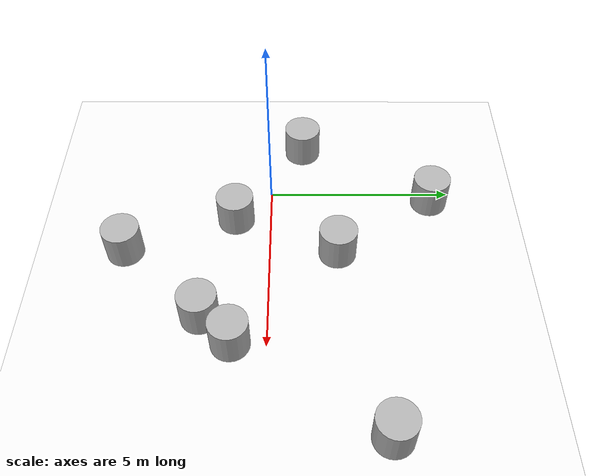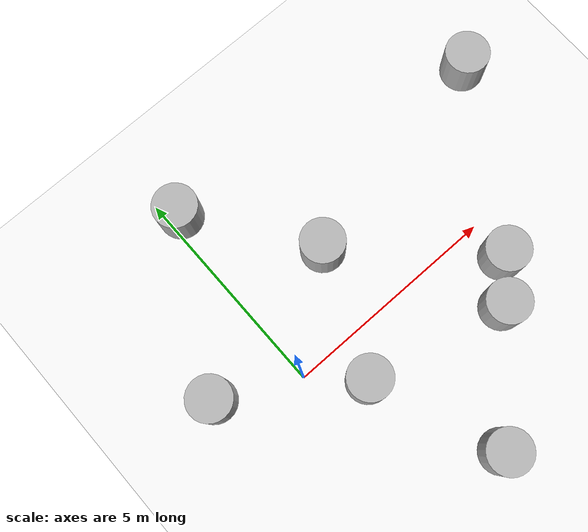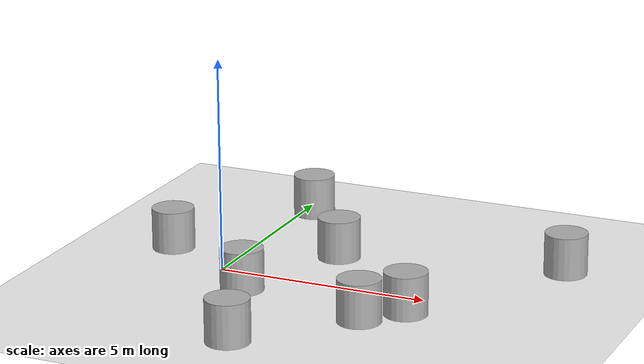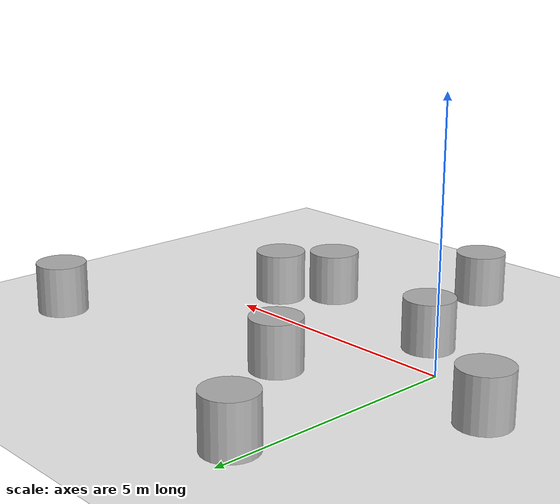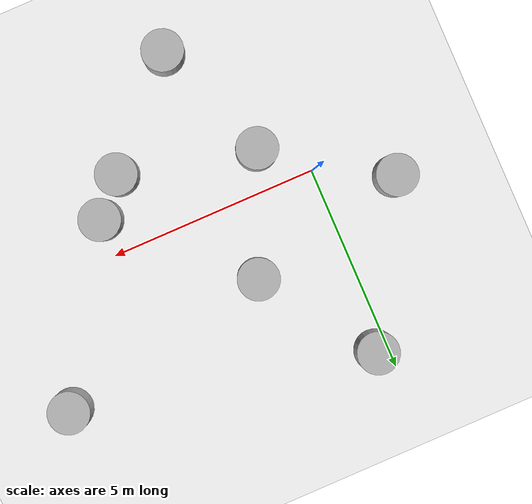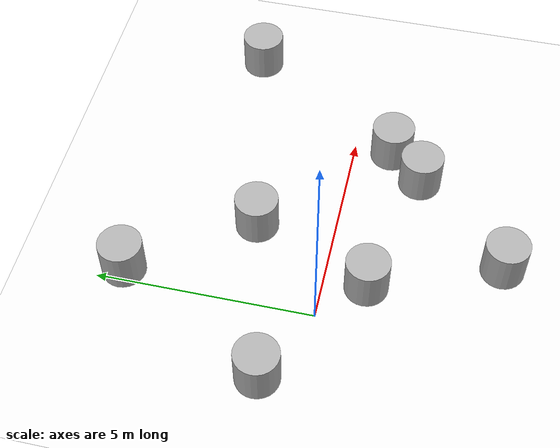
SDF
<sdf version='1.10'>
  <world name='empty'>
    <gravity>0 0 -9.8100000000000005</gravity>
    <plugin name='gz::sim::systems::Physics' filename='gz-sim-physics-system'/>
    <plugin name='gz::sim::systems::UserCommands' filename='gz-sim-user-commands-system'/>
    <plugin name='gz::sim::systems::SceneBroadcaster' filename='gz-sim-scene-broadcaster-system'/>
    <plugin name='gz::sim::systems::Sensors' filename='gz-sim-sensors-system'>
      <render_engine>ogre2</render_engine>
    </plugin>
    <magnetic_field>5.5644999999999998e-06 2.2875799999999999e-05 -4.2388400000000002e-05</magnetic_field>
    <atmosphere type='adiabatic'/>
    <physics type='ode'>
      <max_step_size>0.001</max_step_size>
      <real_time_factor>1</real_time_factor>
      <real_time_update_rate>1000</real_time_update_rate>
    </physics>
    <scene>
      <ambient>0.400000006 0.400000006 0.400000006 1</ambient>
      <background>0.699999988 0.699999988 0.699999988 1</background>
      <shadows>true</shadows>
    </scene>
    <model name='ground_plane'>
      <static>true</static>
      <link name='link'>
        <collision name='collision'>
          <geometry>
            <plane>
              <normal>0 0 1</normal>
              <size>100 100</size>
            </plane>
          </geometry>
          <surface>
            <friction>
              <ode/>
            </friction>
            <bounce/>
            <contact/>
          </surface>
        </collision>
        <visual name='visual'>
          <geometry>
            <plane>
              <normal>0 0 1</normal>
              <size>100 100</size>
            </plane>
          </geometry>
          <material>
            <ambient>0.920000017 0.920000017 0.920000017 1</ambient>
            <diffuse>0.959999979 0.959999979 0.959999979 1</diffuse>
            <specular>0.0500000007 0.0500000007 0.0500000007 1</specular>
          </material>
        </visual>
        <pose>0 0 0 0 0 0</pose>
        <inertial>
          <pose>0 0 0 0 0 0</pose>
          <mass>1</mass>
          <inertia>
            <ixx>1</ixx>
            <ixy>0</ixy>
            <ixz>0</ixz>
            <iyy>1</iyy>
            <iyz>0</iyz>
            <izz>1</izz>
          </inertia>
        </inertial>
        <enable_wind>false</enable_wind>
      </link>
      <pose>0 0 0 0 0 0</pose>
      <self_collide>false</self_collide>
    </model>
    <model name='cylinder'>
      <pose>2.1411199569702148 1.8100990056991577 0.49999900681179138 1.7957341983295031e-19 9.7094444832808347e-21 -1.0879484302211342e-20</pose>
      <link name='cylinder_link'>
        <inertial>
          <inertia>
            <ixx>0.14580000000000001</ixx>
            <ixy>0</ixy>
            <ixz>0</ixz>
            <iyy>0.14580000000000001</iyy>
            <iyz>0</iyz>
            <izz>0.125</izz>
          </inertia>
          <mass>1</mass>
          <pose>0 0 0 0 0 0</pose>
        </inertial>
        <collision name='cylinder_collision'>
          <geometry>
            <cylinder>
              <radius>0.5</radius>
              <length>1</length>
            </cylinder>
          </geometry>
          <surface>
            <friction>
              <ode/>
            </friction>
            <bounce/>
            <contact/>
          </surface>
        </collision>
        <visual name='cylinder_visual'>
          <geometry>
            <cylinder>
              <radius>0.5</radius>
              <length>1</length>
            </cylinder>
          </geometry>
          <material>
            <ambient>0.300000012 0.300000012 0.300000012 1</ambient>
            <diffuse>0.699999988 0.699999988 0.699999988 1</diffuse>
            <specular>1 1 1 1</specular>
          </material>
        </visual>
        <pose>0 0 0 0 0 0</pose>
        <enable_wind>false</enable_wind>
      </link>
      <static>false</static>
      <self_collide>false</self_collide>
    </model>
    <model name='cylinder_0'>
      <pose>4.1769744397734279 -1.6867069856094112 0.49999943714824657 3.0841751579075374e-19 -2.4406181537794006e-19 1.5993523247768571e-20</pose>
      <link name='cylinder_link'>
        <inertial>
          <inertia>
            <ixx>0.14580000000000001</ixx>
            <ixy>0</ixy>
            <ixz>0</ixz>
            <iyy>0.14580000000000001</iyy>
            <iyz>0</iyz>
            <izz>0.125</izz>
          </inertia>
          <mass>1</mass>
          <pose>0 0 0 0 0 0</pose>
        </inertial>
        <collision name='cylinder_collision'>
          <geometry>
            <cylinder>
              <radius>0.5</radius>
              <length>1</length>
            </cylinder>
          </geometry>
          <surface>
            <friction>
              <ode/>
            </friction>
            <bounce/>
            <contact/>
          </surface>
        </collision>
        <visual name='cylinder_visual'>
          <geometry>
            <cylinder>
              <radius>0.5</radius>
              <length>1</length>
            </cylinder>
          </geometry>
          <material>
            <ambient>0.300000012 0.300000012 0.300000012 1</ambient>
            <diffuse>0.699999988 0.699999988 0.699999988 1</diffuse>
            <specular>1 1 1 1</specular>
          </material>
        </visual>
        <pose>0 0 0 0 0 0</pose>
        <enable_wind>false</enable_wind>
      </link>
      <static>false</static>
      <self_collide>false</self_collide>
    </model>
    <model name='cylinder_1'>
      <pose>7.3354235239753969 2.8855798638665306 0.49999943714824657 3.7223568490147931e-19 4.3477145537501512e-19 -1.9365172886210715e-20</pose>
      <link name='cylinder_link'>
        <inertial>
          <inertia>
            <ixx>0.14580000000000001</ixx>
            <ixy>0</ixy>
            <ixz>0</ixz>
            <iyy>0.14580000000000001</iyy>
            <iyz>0</iyz>
            <izz>0.125</izz>
          </inertia>
          <mass>1</mass>
          <pose>0 0 0 0 0 0</pose>
        </inertial>
        <collision name='cylinder_collision'>
          <geometry>
            <cylinder>
              <radius>0.5</radius>
              <length>1</length>
            </cylinder>
          </geometry>
          <surface>
            <friction>
              <ode/>
            </friction>
            <bounce/>
            <contact/>
          </surface>
        </collision>
        <visual name='cylinder_visual'>
          <geometry>
            <cylinder>
              <radius>0.5</radius>
              <length>1</length>
            </cylinder>
          </geometry>
          <material>
            <ambient>0.300000012 0.300000012 0.300000012 1</ambient>
            <diffuse>0.699999988 0.699999988 0.699999988 1</diffuse>
            <specular>1 1 1 1</specular>
          </material>
        </visual>
        <pose>0 0 0 0 0 0</pose>
        <enable_wind>false</enable_wind>
      </link>
      <static>false</static>
      <self_collide>false</self_collide>
    </model>
    <model name='cylinder_2'>
      <pose>4.9361370247616598 -0.88406005529389575 0.4999994350550388 2.4341884931110599e-08 -1.5267938927193685e-09 0.0011863072969796804</pose>
      <link name='cylinder_link'>
        <inertial>
          <inertia>
            <ixx>0.14580000000000001</ixx>
            <ixy>0</ixy>
            <ixz>0</ixz>
            <iyy>0.14580000000000001</iyy>
            <iyz>0</iyz>
            <izz>0.125</izz>
          </inertia>
          <mass>1</mass>
          <pose>0 0 0 0 0 0</pose>
        </inertial>
        <collision name='cylinder_collision'>
          <geometry>
            <cylinder>
              <radius>0.5</radius>
              <length>1</length>
            </cylinder>
          </geometry>
          <surface>
            <friction>
              <ode/>
            </friction>
            <bounce/>
            <contact/>
          </surface>
        </collision>
        <visual name='cylinder_visual'>
          <geometry>
            <cylinder>
              <radius>0.5</radius>
              <length>1</length>
            </cylinder>
          </geometry>
          <material>
            <ambient>0.300000012 0.300000012 0.300000012 1</ambient>
            <diffuse>0.699999988 0.699999988 0.699999988 1</diffuse>
            <specular>1 1 1 1</specular>
          </material>
        </visual>
        <pose>0 0 0 0 0 0</pose>
        <enable_wind>false</enable_wind>
      </link>
      <static>false</static>
      <self_collide>false</self_collide>
    </model>
    <model name='cylinder_3'>
      <pose>0.98451501131057739 -0.95128148794174194 0.49999899681689419 2.3833686515448244e-19 -8.2228541249130842e-20 -6.0658003542147817e-21</pose>
      <link name='cylinder_link'>
        <inertial>
          <inertia>
            <ixx>0.14580000000000001</ixx>
            <ixy>0</ixy>
            <ixz>0</ixz>
            <iyy>0.14580000000000001</iyy>
            <iyz>0</iyz>
            <izz>0.125</izz>
          </inertia>
          <mass>1</mass>
          <pose>0 0 0 0 0 0</pose>
        </inertial>
        <collision name='cylinder_collision'>
          <geometry>
            <cylinder>
              <radius>0.5</radius>
              <length>1</length>
            </cylinder>
          </geometry>
          <surface>
            <friction>
              <ode/>
            </friction>
            <bounce/>
            <contact/>
          </surface>
        </collision>
        <visual name='cylinder_visual'>
          <geometry>
            <cylinder>
              <radius>0.5</radius>
              <length>1</length>
            </cylinder>
          </geometry>
          <material>
            <ambient>0.300000012 0.300000012 0.300000012 1</ambient>
            <diffuse>0.699999988 0.699999988 0.699999988 1</diffuse>
            <specular>1 1 1 1</specular>
          </material>
        </visual>
        <pose>0 0 0 0 0 0</pose>
        <enable_wind>false</enable_wind>
      </link>
      <static>false</static>
      <self_collide>false</self_collide>
    </model>
    <model name='cylinder_4'>
      <pose>-1.7136518111458257 0.87971231396609784 0.49999943714824657 2.9085954386048988e-19 -5.2954758085403498e-20 1.0549378539201186e-20</pose>
      <link name='cylinder_link'>
        <inertial>
          <inertia>
            <ixx>0.14580000000000001</ixx>
            <ixy>0</ixy>
            <ixz>0</ixz>
            <iyy>0.14580000000000001</iyy>
            <iyz>0</iyz>
            <izz>0.125</izz>
          </inertia>
          <mass>1</mass>
          <pose>0 0 0 0 0 0</pose>
        </inertial>
        <collision name='cylinder_collision'>
          <geometry>
            <cylinder>
              <radius>0.5</radius>
              <length>1</length>
            </cylinder>
          </geometry>
          <surface>
            <friction>
              <ode/>
            </friction>
            <bounce/>
            <contact/>
          </surface>
        </collision>
        <visual name='cylinder_visual'>
          <geometry>
            <cylinder>
              <radius>0.5</radius>
              <length>1</length>
            </cylinder>
          </geometry>
          <material>
            <ambient>0.300000012 0.300000012 0.300000012 1</ambient>
            <diffuse>0.699999988 0.699999988 0.699999988 1</diffuse>
            <specular>1 1 1 1</specular>
          </material>
        </visual>
        <pose>0 0 0 0 0 0</pose>
        <enable_wind>false</enable_wind>
      </link>
      <static>false</static>
      <self_collide>false</self_collide>
    </model>
    <model name='cylinder_5'>
      <pose>0.30308900908196534 4.4425163575127957 0.49999943714824657 7.2768277126302023e-20 -1.318467235622219e-19 2.5631259900342867e-20</pose>
      <link name='cylinder_link'>
        <inertial>
          <inertia>
            <ixx>0.14580000000000001</ixx>
            <ixy>0</ixy>
            <ixz>0</ixz>
            <iyy>0.14580000000000001</iyy>
            <iyz>0</iyz>
            <izz>0.125</izz>
          </inertia>
          <mass>1</mass>
          <pose>0 0 0 0 0 0</pose>
        </inertial>
        <collision name='cylinder_collision'>
          <geometry>
            <cylinder>
              <radius>0.5</radius>
              <length>1</length>
            </cylinder>
          </geometry>
          <surface>
            <friction>
              <ode/>
            </friction>
            <bounce/>
            <contact/>
          </surface>
        </collision>
        <visual name='cylinder_visual'>
          <geometry>
            <cylinder>
              <radius>0.5</radius>
              <length>1</length>
            </cylinder>
          </geometry>
          <material>
            <ambient>0.300000012 0.300000012 0.300000012 1</ambient>
            <diffuse>0.699999988 0.699999988 0.699999988 1</diffuse>
            <specular>1 1 1 1</specular>
          </material>
        </visual>
        <pose>0 0 0 0 0 0</pose>
        <enable_wind>false</enable_wind>
      </link>
      <static>false</static>
      <self_collide>false</self_collide>
    </model>
    <model name='cylinder_6'>
      <pose>2.0831965350861772 -3.8608688259968256 0.49999943714824657 -2.0904982214590421e-19 4.2991399749323537e-19 2.590379923593213e-20</pose>
      <link name='cylinder_link'>
        <inertial>
          <inertia>
            <ixx>0.14580000000000001</ixx>
            <ixy>0</ixy>
            <ixz>0</ixz>
            <iyy>0.14580000000000001</iyy>
            <iyz>0</iyz>
            <izz>0.125</izz>
          </inertia>
          <mass>1</mass>
          <pose>0 0 0 0 0 0</pose>
        </inertial>
        <collision name='cylinder_collision'>
          <geometry>
            <cylinder>
              <radius>0.5</radius>
              <length>1</length>
            </cylinder>
          </geometry>
          <surface>
            <friction>
              <ode/>
            </friction>
            <bounce/>
            <contact/>
          </surface>
        </collision>
        <visual name='cylinder_visual'>
          <geometry>
            <cylinder>
              <radius>0.5</radius>
              <length>1</length>
            </cylinder>
          </geometry>
          <material>
            <ambient>0.300000012 0.300000012 0.300000012 1</ambient>
            <diffuse>0.699999988 0.699999988 0.699999988 1</diffuse>
            <specular>1 1 1 1</specular>
          </material>
        </visual>
        <pose>0 0 0 0 0 0</pose>
        <enable_wind>false</enable_wind>
      </link>
      <static>false</static>
      <self_collide>false</self_collide>
    </model>
    <light name='sun' type='directional'>
      <pose>0 0 10 0 0 0</pose>
      <cast_shadows>true</cast_shadows>
      <intensity>1</intensity>
      <direction>-0.5 0.10000000000000001 -0.90000000000000002</direction>
      <diffuse>0.800000012 0.800000012 0.800000012 1</diffuse>
      <specular>0.200000003 0.200000003 0.200000003 1</specular>
      <attenuation>
        <range>10</range>
        <linear>1</linear>
        <constant>1</constant>
        <quadratic>0</quadratic>
      </attenuation>
      <spot>
        <inner_angle>0</inner_angle>
        <outer_angle>0</outer_angle>
        <falloff>0</falloff>
      </spot>
    </light>
  </world>
</sdf>
